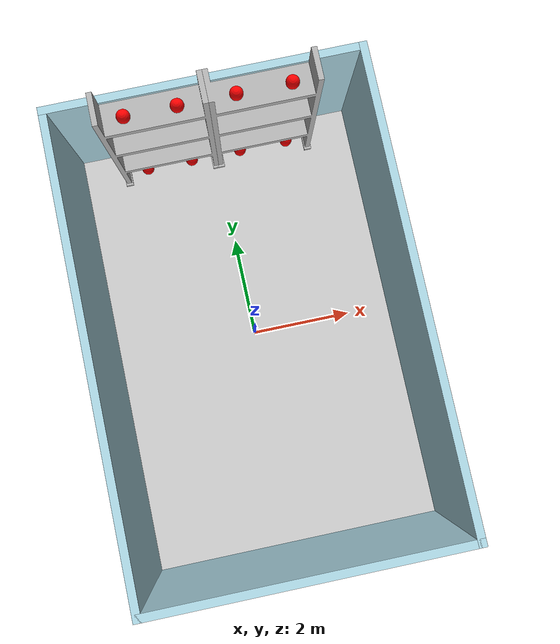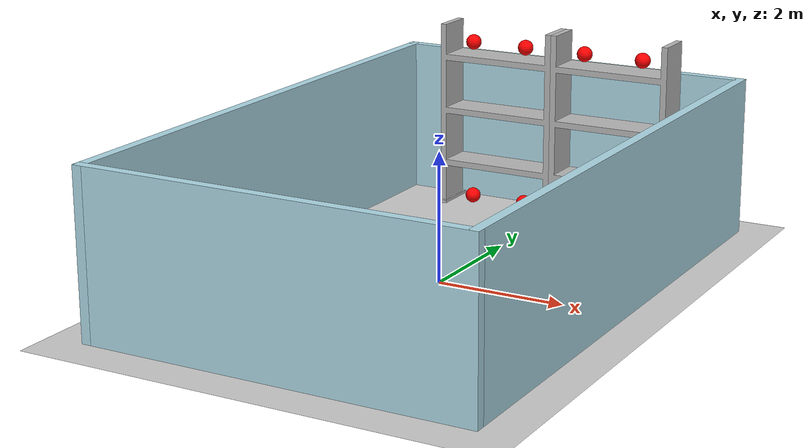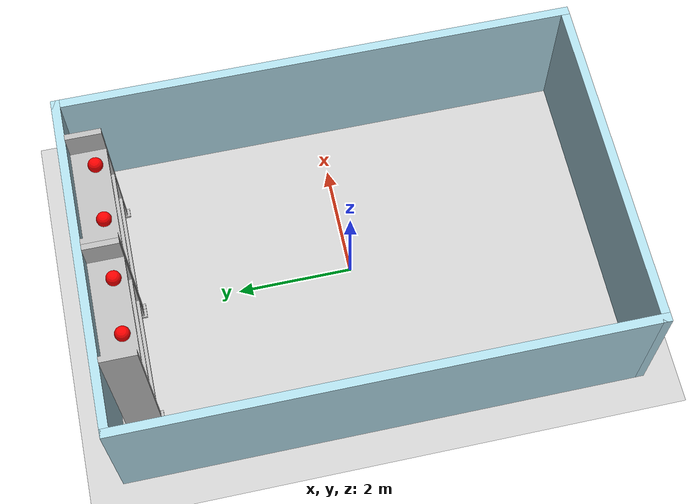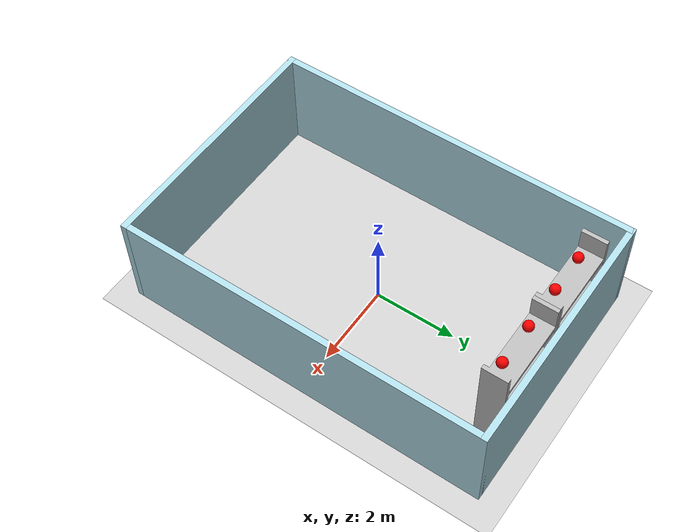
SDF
<?xml version="1.0" ?>
<sdf version="1.9">
  <world name="hero_xr_world">
    <physics type="ode">
      <max_step_size>0.001</max_step_size>
      <real_time_factor>1.0</real_time_factor>
      <real_time_update_rate>1000</real_time_update_rate>
    </physics>
    <plugin name='gz::sim::systems::Physics' filename='libgz-sim-physics-system.so'/>
    <plugin name='gz::sim::systems::UserCommands' filename='libgz-sim-user-commands-system.so'/>
    <plugin name='gz::sim::systems::SceneBroadcaster' filename='libgz-sim-scene-broadcaster-system.so'/>
    <plugin name='gz::sim::systems::Contact' filename='libgz-sim-contact-system.so'/>
    <plugin name='gz::sim::systems::Imu' filename='libgz-sim-imu-system.so'/>
    <plugin name='gz::sim::systems::AirPressure' filename='libgz-sim-air-pressure-system.so'/>
    <plugin name='gz::sim::systems::Sensors' filename='libgz-sim-sensors-system.so'>
      <render_engine>ogre2</render_engine>
    </plugin>
    <gravity>0 0 -9.80665</gravity>
    <magnetic_field>6e-06 2.3e-05 -4.2e-05</magnetic_field>
    <atmosphere type='adiabatic'/>
    <scene>
      <grid>false</grid>
      <ambient>0.4 0.4 0.4 1</ambient>
      <background>0.7 0.7 0.7 1</background>
      <shadows>true</shadows>
    </scene>
    <model name="ground_plane">
      <static>true</static>
      <link name="link">
        <collision name="collision">
          <geometry>
            <plane>
              <normal>0 0 1</normal>
              <size>100 100</size>
            </plane>
          </geometry>
        </collision>
        <visual name="visual">
          <geometry>
            <plane>
              <normal>0 0 1</normal>
              <size>100 100</size>
            </plane>
          </geometry>
          <material>
            <ambient>0.8 0.8 0.8 1</ambient>
            <diffuse>0.8 0.8 0.8 1</diffuse>
            <specular>0.8 0.8 0.8 1</specular>
          </material>
        </visual>
      </link>
    </model>
    <light type="directional" name="sun">
      <cast_shadows>true</cast_shadows>
      <pose>0 0 4 0 0 0</pose>
      <diffuse>0.8 0.8 0.8 1</diffuse>
      <specular>0.2 0.2 0.2 1</specular>
      <attenuation>
        <range>1000</range>
        <constant>0.9</constant>
        <linear>0.01</linear>
        <quadratic>0.001</quadratic>
      </attenuation>
      <direction>-0.5 0.1 -0.9</direction>
    </light>
    <model name='ViconRoom'>
      <pose>0 0 0 0 0 0</pose>
      <link name='Wall_0'>
        <collision name='Wall_0_Collision'>
          <geometry>
            <box>
              <size>9 0.15 2.5</size>
            </box>
          </geometry>
          <pose>0 0 1.25 0 -0 0</pose>
        </collision>
        <visual name='Wall_0_Visual'>
          <pose>0 0 1.25 0 -0 0</pose>
          <geometry>
            <box>
              <size>9 0.15 2.5</size>
            </box>
          </geometry>
          <material>
            <ambient>0.68 0.85 0.9 1</ambient>
            <diffuse>0.68 0.85 0.9 1</diffuse>
            <specular>0.68 0.85 0.9 1</specular>
          </material>
          <meta>
            <layer>0</layer>
          </meta>
        </visual>
        <pose>-2.925 0 0 0 -0 1.5708</pose>
      </link>
      <link name='Wall_1'>
        <collision name='Wall_1_Collision'>
          <geometry>
            <box>
              <size>6 0.15 2.5</size>
            </box>
          </geometry>
          <pose>0 0 1.25 0 -0 0</pose>
        </collision>
        <visual name='Wall_1_Visual'>
          <pose>0 0 1.25 0 -0 0</pose>
          <geometry>
            <box>
              <size>6 0.15 2.5</size>
            </box>
          </geometry>
          <material>
            <ambient>0.68 0.85 0.9 1</ambient>
            <diffuse>0.68 0.85 0.9 1</diffuse>
            <specular>0.68 0.85 0.9 1</specular>
          </material>
          <meta>
            <layer>0</layer>
          </meta>
        </visual>
        <pose>-0 4.425 0 0 -0 0</pose>
      </link>
      <link name='Wall_2'>
        <collision name='Wall_2_Collision'>
          <geometry>
            <box>
              <size>9 0.15 2.5</size>
            </box>
          </geometry>
          <pose>0 0 1.25 0 -0 0</pose>
        </collision>
        <visual name='Wall_2_Visual'>
          <pose>0 0 1.25 0 -0 0</pose>
          <geometry>
            <box>
              <size>9 0.15 2.5</size>
            </box>
          </geometry>
          <material>
            <ambient>0.68 0.85 0.9 1</ambient>
            <diffuse>0.68 0.85 0.9 1</diffuse>
            <specular>0.68 0.85 0.9 1</specular>
          </material>
          <meta>
            <layer>0</layer>
          </meta>
        </visual>
        <pose>2.925 0 0 0 -0 -1.5708</pose>
      </link>
      <link name='Wall_3'>
        <collision name='Wall_3_Collision'>
          <geometry>
            <box>
              <size>6 0.15 2.5</size>
            </box>
          </geometry>
          <pose>0 0 1.25 0 -0 0</pose>
        </collision>
        <visual name='Wall_3_Visual'>
          <pose>0 0 1.25 0 -0 0</pose>
          <geometry>
            <box>
              <size>6 0.15 2.5</size>
            </box>
          </geometry>
          <material>
            <ambient>0.68 0.85 0.9 1</ambient>
            <diffuse>0.68 0.85 0.9 1</diffuse>
            <specular>0.68 0.85 0.9 1</specular>
          </material>
          <meta>
            <layer>0</layer>
          </meta>
        </visual>
        <pose>-0 -4.425 0 0 -0 3.14159</pose>
      </link>
      <static>1</static>
    </model>

    <model name='unit_sphere_0'>
       <pose>-1.5 3.9 0.125 0 0 0</pose>
       <static>true</static>
       <link name='link'>
       <inertial>
         <mass>1</mass>
        <inertia>
          <ixx>0.1</ixx>
          <ixy>0</ixy>
          <ixz>0</ixz>
          <iyy>0.1</iyy>
          <iyz>0</iyz>
          <izz>0.1</izz>
        </inertia>
         <pose>0 0 0.125 0 -0 0</pose>
       </inertial>
       <collision name='collision'>
       <geometry>
         <sphere>
           <radius>0.125</radius>
         </sphere>
       </geometry>
       <max_contacts>10</max_contacts>
      </collision>
      <visual name='visual'>
      <geometry>
         <sphere>
           <radius>0.125</radius>
         </sphere>
      </geometry>
      <material>
        <ambient>1 0 0 1</ambient>
        <diffuse>1 0 0 1</diffuse>
        <specular>0.1 0.1 0.1 1</specular>
      </material>
     </visual>
     <self_collide>0</self_collide>
     <enable_wind>0</enable_wind>
     <kinematic>0</kinematic>
     </link>
   </model>
   <model name='unit_sphere_1'>
       <pose>-0.55 3.9 0.125 0 0 0</pose>
       <static>true</static>
       <link name='link'>
       <inertial>
         <mass>1</mass>
        <inertia>
          <ixx>0.1</ixx>
          <ixy>0</ixy>
          <ixz>0</ixz>
          <iyy>0.1</iyy>
          <iyz>0</iyz>
          <izz>0.1</izz>
        </inertia>
         <pose>0 0 0.125 0 -0 0</pose>
       </inertial>
       <collision name='collision'>
       <geometry>
         <sphere>
           <radius>0.125</radius>
         </sphere>
       </geometry>
       <max_contacts>10</max_contacts>
      </collision>
      <visual name='visual'>
      <geometry>
         <sphere>
           <radius>0.125</radius>
         </sphere>
      </geometry>
      <material>
        <ambient>1 0 0 1</ambient>
        <diffuse>1 0 0 1</diffuse>
        <specular>0.1 0.1 0.1 1</specular>
      </material>
     </visual>
     <self_collide>0</self_collide>
     <enable_wind>0</enable_wind>
     <kinematic>0</kinematic>
     </link>
   </model>
   <model name='unit_sphere_2'>
       <pose>0.5 3.9 0.125 0 0 0</pose>
       <static>true</static>
       <link name='link'>
       <inertial>
         <mass>1</mass>
        <inertia>
          <ixx>0.1</ixx>
          <ixy>0</ixy>
          <ixz>0</ixz>
          <iyy>0.1</iyy>
          <iyz>0</iyz>
          <izz>0.1</izz>
        </inertia>
         <pose>0 0 0.125 0 -0 0</pose>
       </inertial>
       <collision name='collision'>
       <geometry>
         <sphere>
           <radius>0.125</radius>
         </sphere>
       </geometry>
       <max_contacts>10</max_contacts>
      </collision>
      <visual name='visual'>
      <geometry>
         <sphere>
           <radius>0.125</radius>
         </sphere>
      </geometry>
      <material>
        <ambient>1 0 0 1</ambient>
        <diffuse>1 0 0 1</diffuse>
        <specular>0.1 0.1 0.1 1</specular>
      </material>
     </visual>
     <self_collide>0</self_collide>
     <enable_wind>0</enable_wind>
     <kinematic>0</kinematic>
     </link>
   </model>
   <model name='unit_sphere_3'>
       <pose>1.5 3.9 0.125 0 0 0</pose>
       <static>true</static>
       <link name='link'>
       <inertial>
         <mass>1</mass>
        <inertia>
          <ixx>0.1</ixx>
          <ixy>0</ixy>
          <ixz>0</ixz>
          <iyy>0.1</iyy>
          <iyz>0</iyz>
          <izz>0.1</izz>
        </inertia>
         <pose>0 0 0.125 0 -0 0</pose>
       </inertial>
       <collision name='collision'>
       <geometry>
         <sphere>
           <radius>0.125</radius>
         </sphere>
       </geometry>
       <max_contacts>10</max_contacts>
      </collision>
      <visual name='visual'>
      <geometry>
         <sphere>
           <radius>0.125</radius>
         </sphere>
      </geometry>
      <material>
        <ambient>1 0 0 1</ambient>
        <diffuse>1 0 0 1</diffuse>
        <specular>0.1 0.1 0.1 1</specular>
      </material>
     </visual>
     <self_collide>0</self_collide>
     <enable_wind>0</enable_wind>
     <kinematic>0</kinematic>
     </link>
   </model>
   <model name='unit_sphere_4'>
       <pose>-1.5 3.9 2.75 0 0 0</pose>
       <static>true</static>
       <link name='link'>
       <inertial>
         <mass>1</mass>
        <inertia>
          <ixx>0.1</ixx>
          <ixy>0</ixy>
          <ixz>0</ixz>
          <iyy>0.1</iyy>
          <iyz>0</iyz>
          <izz>0.1</izz>
        </inertia>
         <pose>0 0 0.125 0 -0 0</pose>
       </inertial>
       <collision name='collision'>
       <geometry>
         <sphere>
           <radius>0.125</radius>
         </sphere>
       </geometry>
       <max_contacts>10</max_contacts>
      </collision>
      <visual name='visual'>
      <geometry>
         <sphere>
           <radius>0.125</radius>
         </sphere>
      </geometry>
      <material>
        <ambient>1 0 0 1</ambient>
        <diffuse>1 0 0 1</diffuse>
        <specular>0.1 0.1 0.1 1</specular>
      </material>
     </visual>
     <self_collide>0</self_collide>
     <enable_wind>0</enable_wind>
     <kinematic>0</kinematic>
     </link>
   </model>
   <model name='unit_sphere_5'>
       <pose>-0.55 3.9 2.75 0 0 0</pose>
       <static>true</static>
       <link name='link'>
       <inertial>
         <mass>1</mass>
        <inertia>
          <ixx>0.1</ixx>
          <ixy>0</ixy>
          <ixz>0</ixz>
          <iyy>0.1</iyy>
          <iyz>0</iyz>
          <izz>0.1</izz>
        </inertia>
         <pose>0 0 0.125 0 -0 0</pose>
       </inertial>
       <collision name='collision'>
       <geometry>
         <sphere>
           <radius>0.125</radius>
         </sphere>
       </geometry>
       <max_contacts>10</max_contacts>
      </collision>
      <visual name='visual'>
      <geometry>
         <sphere>
           <radius>0.125</radius>
         </sphere>
      </geometry>
      <material>
        <ambient>1 0 0 1</ambient>
        <diffuse>1 0 0 1</diffuse>
        <specular>0.1 0.1 0.1 1</specular>
      </material>
     </visual>
     <self_collide>0</self_collide>
     <enable_wind>0</enable_wind>
     <kinematic>0</kinematic>
     </link>
   </model>
   <model name='unit_sphere_6'>
       <pose>0.5 3.9 2.75 0 0 0</pose>
       <static>true</static>
       <link name='link'>
       <inertial>
         <mass>1</mass>
        <inertia>
          <ixx>0.1</ixx>
          <ixy>0</ixy>
          <ixz>0</ixz>
          <iyy>0.1</iyy>
          <iyz>0</iyz>
          <izz>0.1</izz>
        </inertia>
         <pose>0 0 0.125 0 -0 0</pose>
       </inertial>
       <collision name='collision'>
       <geometry>
         <sphere>
           <radius>0.125</radius>
         </sphere>
       </geometry>
       <max_contacts>10</max_contacts>
      </collision>
      <visual name='visual'>
      <geometry>
         <sphere>
           <radius>0.125</radius>
         </sphere>
      </geometry>
      <material>
        <ambient>1 0 0 1</ambient>
        <diffuse>1 0 0 1</diffuse>
        <specular>0.1 0.1 0.1 1</specular>
      </material>
     </visual>
     <self_collide>0</self_collide>
     <enable_wind>0</enable_wind>
     <kinematic>0</kinematic>
     </link>
   </model>
   <model name='unit_sphere_7'>
       <pose>1.5 3.9 2.75 0 0 0</pose>
       <static>true</static>
       <link name='link'>
       <inertial>
         <mass>1</mass>
        <inertia>
          <ixx>0.1</ixx>
          <ixy>0</ixy>
          <ixz>0</ixz>
          <iyy>0.1</iyy>
          <iyz>0</iyz>
          <izz>0.1</izz>
        </inertia>
         <pose>0 0 0.125 0 -0 0</pose>
       </inertial>
       <collision name='collision'>
       <geometry>
         <sphere>
           <radius>0.125</radius>
         </sphere>
       </geometry>
       <max_contacts>10</max_contacts>
      </collision>
      <visual name='visual'>
      <geometry>
         <sphere>
           <radius>0.125</radius>
         </sphere>
      </geometry>
      <material>
        <ambient>1 0 0 1</ambient>
        <diffuse>1 0 0 1</diffuse>
        <specular>0.1 0.1 0.1 1</specular>
      </material>
     </visual>
     <self_collide>0</self_collide>
     <enable_wind>0</enable_wind>
     <kinematic>0</kinematic>
     </link>
   </model>

    <include>
      <uri>model://Shelf</uri>
      <name>Shelf_1</name>
      <static>true</static>
      <pose>1 4.3 0.04 0 0 0</pose>
    </include>
    <include>
      <uri>model://Shelf</uri>
      <name>Shelf_2</name>
      <static>true</static>
      <pose>-1 4.3 0.04 0 0 0</pose>
    </include>
  </world>
</sdf>

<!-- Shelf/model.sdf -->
<sdf version="1.6">
  <model name="Shelf">
    <static>false</static>
    <link name="link">
     <inertial>
        <mass>20.0</mass>
        <inertia>
          <ixx>1.0</ixx>
          <ixy>0.0</ixy>
          <ixz>0.0</ixz>
          <iyy>1.0</iyy>
          <iyz>0.0</iyz>
          <izz>1.0</izz>
        </inertia>
      </inertial>
      <visual name="visual">
        <geometry>
          <mesh>
            <uri>model://Shelf/meshes/Shelf.dae</uri>
          </mesh>
        </geometry>
      </visual>
      <collision name="collision">
        <geometry>
          <mesh>
            <uri>model://Shelf/meshes/Shelf.dae</uri>
          </mesh>
        </geometry>
      </collision>
    </link>
  </model>
</sdf>
